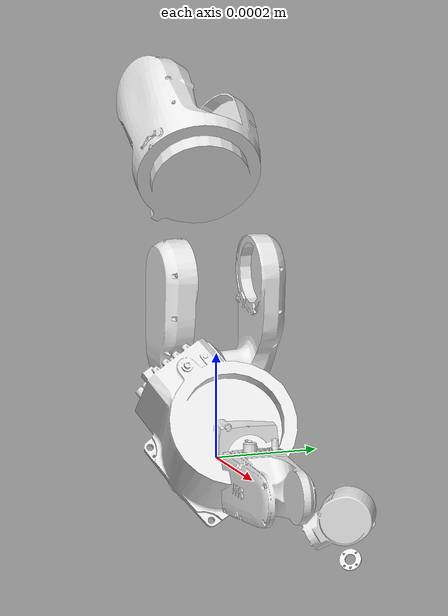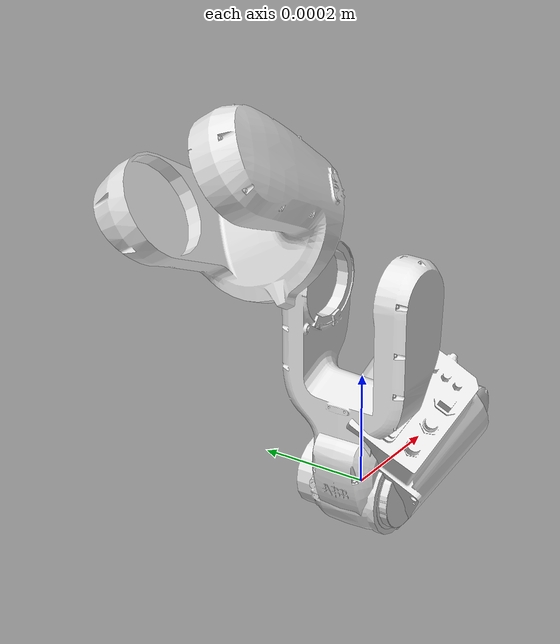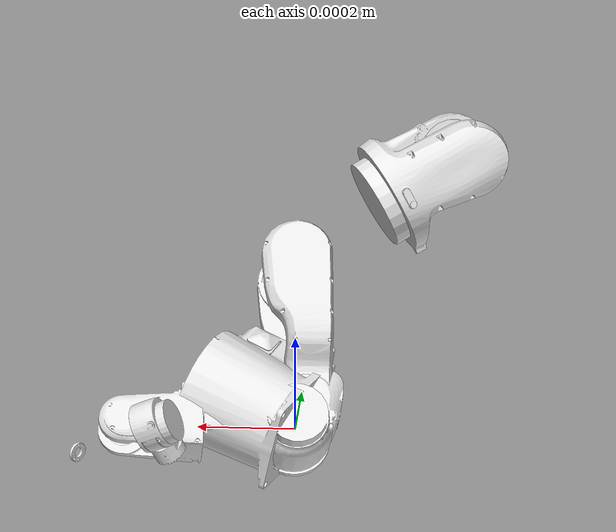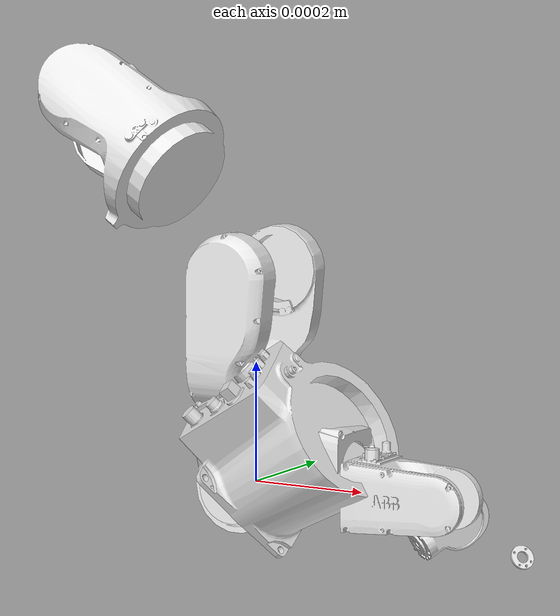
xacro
<?xml version="1.0" ?>

<robot name="abb_irb1200_7_70" xmlns:xacro="http://ros.org/wiki/xacro">
  <xacro:include filename="$(find abb_irb1200_support)/urdf/irb1200_7_70_macro.xacro" />
  <xacro:include filename="$(find abb_irb1200_gazebo)/urdf/irb1200_7_70_macro.xacro" />

  <!-- get base ABB IRB1200 model -->
  <xacro:abb_irb1200_7_70 prefix="" />

  <!-- get gazebo add-ons -->
  <xacro:abb_irb1200_7_70_gazebo_spec prefix="" />

  <!-- connect robot with world -->
  <link name="world" />
  <joint name="world_to_base_link_joint" type="fixed">
    <parent link="world" />
    <child link="base_link" />
  </joint>

  <!-- ros_control plugin -->
  <gazebo>
    <plugin name="gazebo_ros_control" filename="libgazebo_ros_control.so">
      <robotNamespace>/</robotNamespace>
      <robotSimType>gazebo_ros_control/DefaultRobotHWSim</robotSimType>
    </plugin>
  </gazebo>

</robot>

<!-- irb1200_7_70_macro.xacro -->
<robot xmlns:xacro="http://ros.org/wiki/xacro">
  <xacro:macro name="abb_irb1200_7_70" params="prefix">
    <!-- link list -->
    <link name="${prefix}base_link">
      <!-- all inertial values are copied from irb1200_5_90_macro.xacro. TODO: calculate proper inertias! -->
      <inertial>
        <mass value="6.215"/>
        <origin xyz="-0.04204 8.01E-05 0.07964" rpy="0 0 0"/>
        <inertia ixx="0.0247272" ixy="-8.0784E-05" ixz="0.00130902" iyy="0.0491285" iyz="-8.0419E-06" izz="0.0472376"/>
      </inertial>
      <collision name="collision">
        <geometry>
          <mesh filename="package://abb_irb1200_support/meshes/irb1200_7_70/collision/base_link.stl" scale="0.001 0.001 0.001" />
        </geometry>
        <material name="yellow">
          <color rgba="1 1 0 1"/>
        </material>
      </collision>
      <visual name="visual">
        <geometry>
          <mesh filename="package://abb_irb1200_support/meshes/irb1200_7_70/visual/base_link.stl" scale="0.001 0.001 0.001" />
        </geometry>
        <material name="graphite_white">
          <color rgba="0.9 0.9 0.9 1"/>
        </material>
      </visual>
    </link>
    <link name="${prefix}link_1">
      <inertial>
        <mass value="3.067" />
        <origin xyz="9.77E-05 -0.00012 0.23841" rpy="0 0 0"/>
        <inertia ixx="0.0142175" ixy="-1.28579E-05" ixz="-2.31364E-05" iyy="0.0144041" iyz="1.93404E-05" izz="0.0104533"/>
      </inertial>
      <collision name="collision">
        <geometry>
          <mesh filename="package://abb_irb1200_support/meshes/irb1200_7_70/collision/link_1.stl" scale="0.001 0.001 0.001" />
        </geometry>
        <material name="yellow"/>
      </collision>
      <visual name="visual">
        <geometry>
          <mesh filename="package://abb_irb1200_support/meshes/irb1200_7_70/visual/link_1.stl" scale="0.001 0.001 0.001" />
        </geometry>
        <material name="graphite_white"/>
      </visual>
    </link>
    <link name="${prefix}link_2">
      <inertial>
        <mass value="3.909"/>
        <origin xyz="0.00078 -0.00212 0.10124" rpy="0 0 0"/>
        <inertia ixx="0.0603111" ixy="9.83431E-06" ixz="5.72407E-05" iyy="0.041569" iyz="-0.00050497" izz="0.0259548"/>
      </inertial>
      <collision name="collision">
        <geometry>
          <mesh filename="package://abb_irb1200_support/meshes/irb1200_7_70/collision/link_2.stl" scale="0.001 0.001 0.001" />
        </geometry>
        <origin xyz="0 0 -0.399" />
        <material name="yellow"/>
      </collision>
      <visual name="visual">
        <geometry>
          <mesh filename="package://abb_irb1200_support/meshes/irb1200_7_70/visual/link_2.stl" scale="0.001 0.001 0.001" />
        </geometry>
        <origin xyz="0 0 -0.399" />
        <material name="graphite_white"/>
      </visual>
    </link>
    <link name="${prefix}link_3">
      <inertial>
        <mass value="2.944"/>
        <origin xyz="0.02281 0.00106 0.05791" rpy="0 0 0"/>
        <inertia ixx="0.00835606" ixy="-8.01545E-05" ixz="0.00142884" iyy="0.016713" iyz="-0.000182227" izz="0.0126984"/>
      </inertial>
      <collision name="graphite_white">
        <geometry>
          <mesh filename="package://abb_irb1200_support/meshes/irb1200_7_70/collision/link_3.stl" scale="0.001 0.001 0.001" />
        </geometry>
        <origin xyz="0 0 -0.749" />
        <material name="yellow"/>
      </collision>
      <visual name="visual">
        <geometry>
          <mesh filename="package://abb_irb1200_support/meshes/irb1200_7_70/visual/link_3.stl" scale="0.001 0.001 0.001" />
        </geometry>
        <origin xyz="0 0 -0.749" />
        <material name="graphite_white"/>
      </visual>
    </link>
    <link name="${prefix}link_4">
      <inertial>
        <mass value="1.328"/>
        <origin xyz="0.2247 0.00015 0.00041" rpy="0 0 0"/>
        <inertia ixx="0.00284661" ixy="-2.12765E-05" ixz="-1.6435E-05" iyy="0.00401346" iyz="1.31336E-05" izz="0.0052535"/>
      </inertial>
      <collision name="collision">
        <geometry>
          <mesh filename="package://abb_irb1200_support/meshes/irb1200_7_70/collision/link_4.stl" scale="0.001 0.001 0.001" />
        </geometry>
        <origin xyz="0 0 ${-0.749 - 0.042}" />
        <material name="yellow"/>
      </collision>
      <visual name="visual">
        <geometry>
          <mesh filename="package://abb_irb1200_support/meshes/irb1200_7_70/visual/link_4.stl" scale="0.001 0.001 0.001" />
        </geometry>
        <origin xyz="0 0 ${-0.749 - 0.042}" />
        <material name="graphite_white"/>
      </visual>
    </link>
    <link name="${prefix}link_5">
      <inertial>
        <mass value="0.546"/>
        <origin xyz="-0.00109 3.68E-05 6.22E-05" rpy="0 0 0"/>
        <inertia ixx="0.000404891" ixy="1.61943E-06" ixz="8.46805E-07" iyy="0.000892825" iyz="-1.51792E-08" izz="0.000815468"/>
      </inertial>
      <collision name="collision">
        <geometry>
          <mesh filename="package://abb_irb1200_support/meshes/irb1200_7_70/collision/link_5.stl" scale="0.001 0.001 0.001" />
        </geometry>
        <origin xyz="-0.351 0 ${-0.749 - 0.042}" />
        <material name="yellow"/>
      </collision>
      <visual name="visual">
        <geometry>
          <mesh filename="package://abb_irb1200_support/meshes/irb1200_7_70/visual/link_5.stl" scale="0.001 0.001 0.001" />
        </geometry>
        <origin xyz="-0.351 0 ${-0.749 - 0.042}" />
        <material name="graphite_white"/>
      </visual>
    </link>
    <link name="${prefix}link_6">
      <inertial>
        <mass value="0.137"/>
        <origin xyz="-0.00706 -0.00017 -1.32E-06" rpy="0 0 0"/>
        <inertia ixx="0.001" ixy="0" ixz="0" iyy="0.001" iyz="0" izz="0.001"/>
      </inertial>
      <collision name="collision">
        <geometry>
          <mesh filename="package://abb_irb1200_support/meshes/irb1200_7_70/collision/link_6.stl" scale="0.001 0.001 0.001" />
        </geometry>
        <origin xyz="${-0.351 - 0.082} 0 ${-0.749 - 0.042}" />
        <material name="yellow"/>
      </collision>
      <visual name="visual">
        <geometry>
          <mesh filename="package://abb_irb1200_support/meshes/irb1200_7_70/visual/link_6.stl" scale="0.001 0.001 0.001" />
        </geometry>
        <origin xyz="${-0.351 - 0.082} 0 ${-0.749 - 0.042}" />
        <material name="graphite_white"/>
      </visual>
    </link>
    <link name="${prefix}tool0"/>
    <!-- end of link list -->

    <!-- joint list -->
    <joint type="revolute" name="${prefix}joint_1">
      <origin xyz="0 0 0" rpy="0 0 0"/>
      <axis xyz="0 0 1"/>
      <parent link="${prefix}base_link"/>
      <child link="${prefix}link_1"/>
      <limit effort="0" lower="-2.967" upper="2.967" velocity="5.027"/>
    </joint>
    <joint type="revolute" name="${prefix}joint_2">
      <origin xyz="0 0 0.399" rpy="0 0 0"/>
      <axis xyz="0 1 0"/>
      <parent link="${prefix}link_1"/>
      <child link="${prefix}link_2"/>
      <limit effort="0" lower="-1.745" upper="2.356" velocity="4.189"/>
    </joint>
    <joint type="revolute" name="${prefix}joint_3">
      <origin xyz="0 0 0.350" rpy="0 0 0"/>
      <axis xyz="0 1 0"/>
      <parent link="${prefix}link_2"/>
      <child link="${prefix}link_3"/>
      <limit effort="0" lower="-3.491" upper="1.222" velocity="5.236"/>
    </joint>
    <joint type="revolute" name="${prefix}joint_4">
      <origin xyz="0 0 0.042" rpy="0 0 0"/>
      <axis xyz="1 0 0"/>
      <parent link="${prefix}link_3"/>
      <child link="${prefix}link_4"/>
      <limit effort="0" lower="-4.712" upper="4.712" velocity="6.981"/>
    </joint>
    <joint type="revolute" name="${prefix}joint_5">
      <origin xyz="0.351 0 0 " rpy="0 0 0"/>
      <axis xyz="0 1 0"/>
      <parent link="${prefix}link_4"/>
      <child link="${prefix}link_5"/>
      <limit effort="0" lower="-2.269" upper="2.269" velocity="7.069"/>
    </joint>
    <joint type="revolute" name="${prefix}joint_6">
      <origin xyz="0.082 0 0 " rpy="0 0 0"/>
      <axis xyz="1 0 0"/>
      <parent link="${prefix}link_5"/>
      <child link="${prefix}link_6"/>
      <limit effort="0" lower="-6.283" upper="6.283" velocity="10.472"/>
    </joint>
    <joint type="fixed" name="${prefix}joint_6-tool0">
      <parent link="${prefix}link_6"/>
      <child link="${prefix}tool0"/>
      <origin xyz="0 0 0" rpy="0 1.57079632679 0"/>
    </joint>
    <!-- end of joint list -->

    <!-- ROS base_link to ABB World Coordinates transform -->
    <link name="${prefix}base" />
    <joint name="${prefix}base_link-base" type="fixed">
      <origin xyz="0 0 0" rpy="0 0 0"/>
      <parent link="${prefix}base_link"/>
      <child link="${prefix}base"/>
    </joint>
  </xacro:macro>
</robot>
